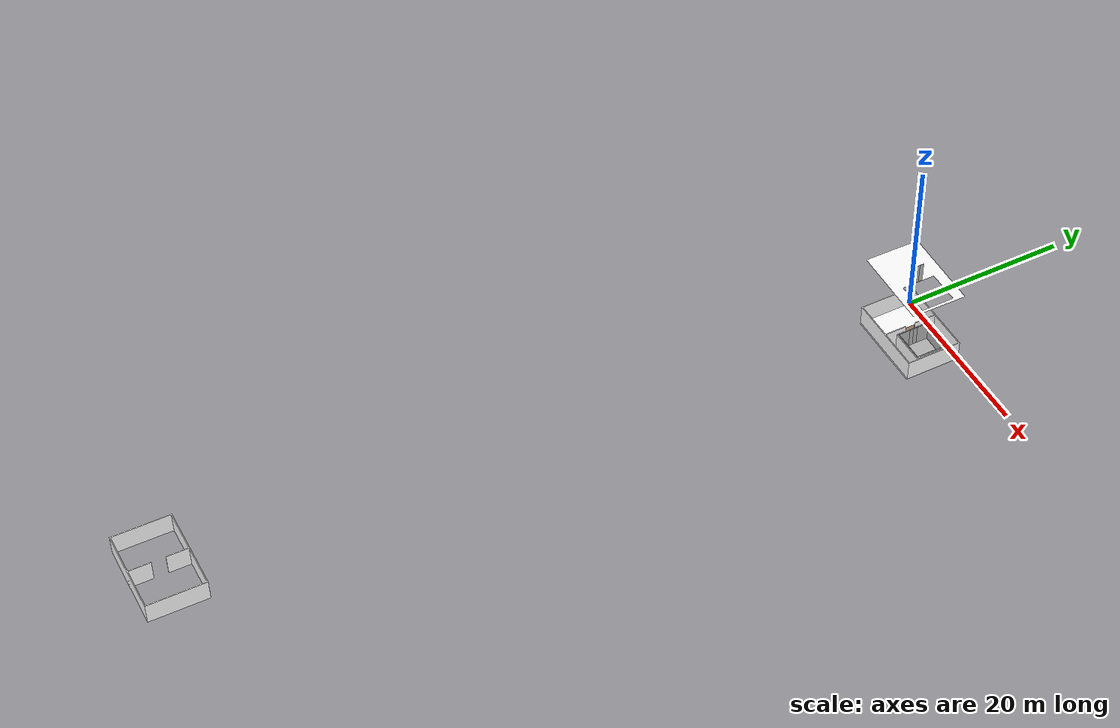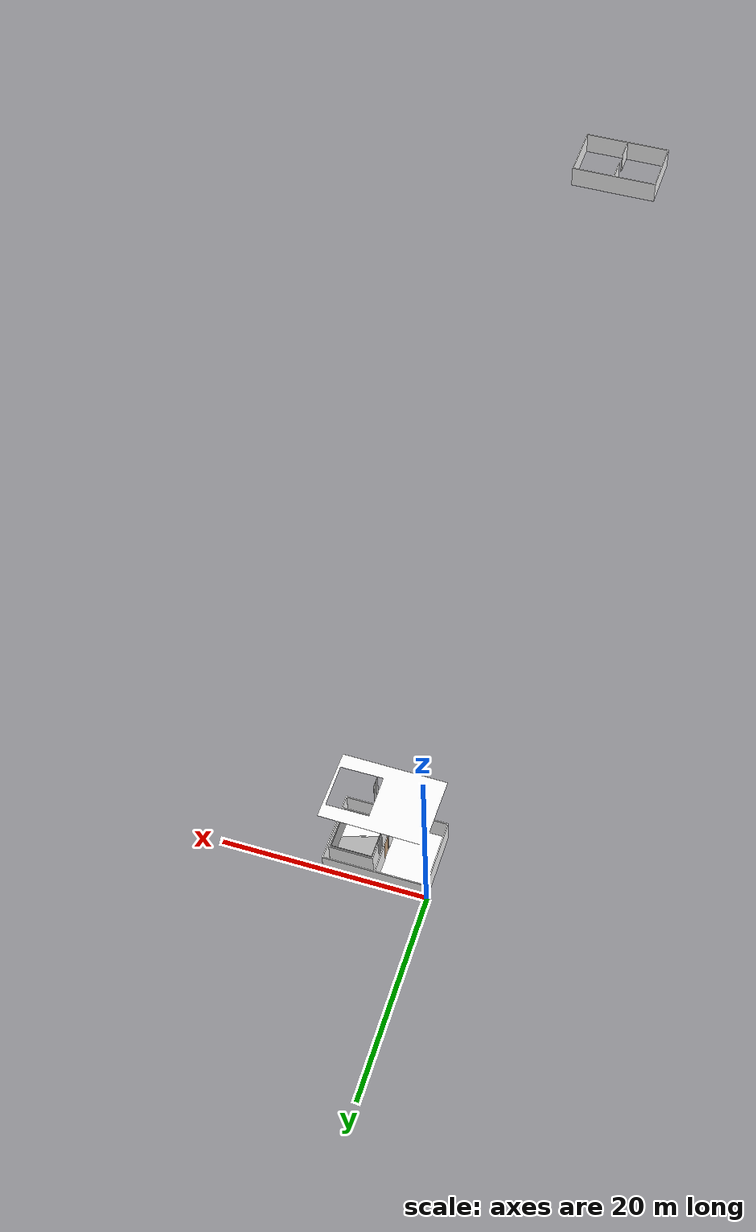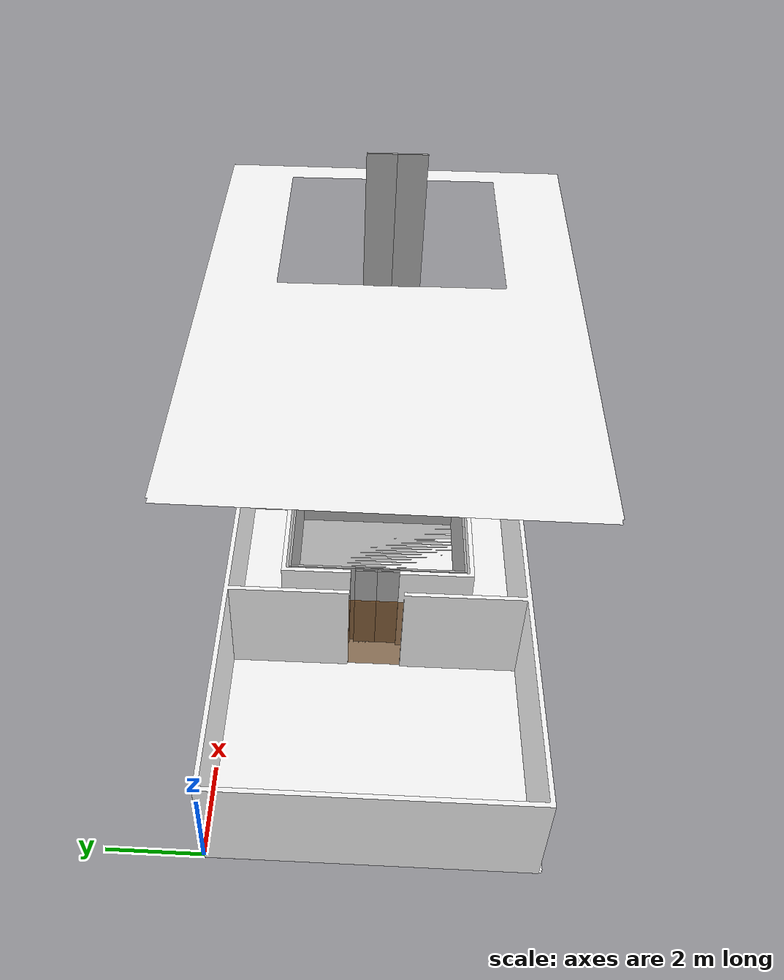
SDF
<sdf version="1.7">
 <world name="sim_world">
  <physics name="10ms" type="ode">
   <max_step_size>0.01</max_step_size>
   <real_time_factor>1.0</real_time_factor>
  </physics>
  <plugin filename="libgz-sim-physics-system.so" name="gz::sim::systems::Physics"/>
  <plugin filename="libgz-sim-user-commands-system.so" name="gz::sim::systems::UserCommands"/>
  <plugin filename="libgz-sim-scene-broadcaster-system.so" name="gz::sim::systems::SceneBroadcaster"/>
  <plugin filename="libdoor.so" name="door"/>
  <plugin filename="liblift.so" name="lift"/>
  <scene><ambient>1 1 1</ambient><background>0.8 0.8 0.8</background><grid>false</grid></scene>
  <light type="directional" name="sun">
   <pose>0 0 10 0 0 0</pose>
   <diffuse>1 1 1 1</diffuse>
   <specular>0.2 0.2 0.2 1</specular>
   <attenuation>
    <range>1000</range>
    <constant>0.09</constant>
    <linear>0.001</linear>
    <quadratic>0.001</quadratic>
   </attenuation>
   <direction>-0.5 0.1 -0.9</direction>
  </light>
  <model name="null">
   <pose>4.965933333333334 -3.3262 0.0 0 0 1.5707963267948966</pose>
   <link name="right">
    <pose>0 0 1.11 0 0 0</pose>
    <visual name="right_visual">
     <geometry><box><size>1.299333333333333 0.03 2.2</size></box></geometry>
     <material>
      <ambient>0.5 0.25 0 0.6</ambient>
      <diffuse>0.5 0.25 0 0.6</diffuse>
      <pbr><metal><metalness>0.0</metalness></metal></pbr>
     </material>
    </visual>
    <collision name="right_collision">
     <geometry><box><size>1.299333333333333 0.03 2.2</size></box></geometry>
     <surface><contact><collide_bitmask>0x02</collide_bitmask></contact></surface>
    </collision>
    <inertial>
     <mass>50.0</mass>
     <inertia><ixx>20.17041666666667</ixx><iyy>27.201112962962963</iyy><izz>7.0381962962962925</izz></inertia>
    </inertial>
   </link>
   <joint name="right_joint" type="revolute">
    <parent>world</parent>
    <child>right</child>
    <axis><xyz>0 0 -1</xyz><limit><lower>0</lower><upper>1.57</upper></limit></axis>
    <pose>0.6546666666666665 0 0 0 0 0</pose>
   </joint>
   <plugin name="register_component" filename="libregister_component.so">
    <component name="Door">
     <v_max_door>0.5</v_max_door>
     <a_max_door>0.3</a_max_door>
     <a_nom_door>0.15</a_nom_door>
     <dx_min_door>0.01</dx_min_door>
     <f_max_door>500.0</f_max_door>
     <ros_interface>true</ros_interface>
     <door name="null" type="SwingDoor" left_joint_name="empty_joint" right_joint_name="right_joint"/>
    </component>
   </plugin>
  </model>
  <include><name>simple_L1</name><uri>model://simple_L1</uri></include>
  <include><name>simple_L2</name><uri>model://simple_L2</uri><pose>0 0 10.0 0 0 0</pose></include>
  <model name="ShaftDoor_lift1_L1_lift1_door">
   <pose>5.616666666666667 -3.3333333333333335 0.0 0 0 1.57</pose>
   <link name="right_door">
    <pose>0.25 0 1.25 0 0 0</pose>
    <visual name="right_door_visual">
     <geometry><box><size>0.5 0.03 2.5</size></box></geometry>
     <material>
      <ambient>0.5 0.5 0.5 1</ambient>
      <diffuse>0.7 0.7 0.7 1</diffuse>
      <specular>0.6 0.6 0.6 1</specular>
      <emissive>0.1 0.1 0.1 1</emissive>
     </material>
    </visual>
    <collision name="right_door_collision">
     <geometry><box><size>0.5 0.03 2.5</size></box></geometry>
     <surface><contact><collide_bitmask>0x02</collide_bitmask></contact></surface>
    </collision>
   </link>
   <link name="left_door">
    <pose>-0.25 0 1.25 0 0 0</pose>
    <visual name="left_door_visual">
     <geometry><box><size>0.5 0.03 2.5</size></box></geometry>
     <material>
      <ambient>0.5 0.5 0.5 1</ambient>
      <diffuse>0.7 0.7 0.7 1</diffuse>
      <specular>0.6 0.6 0.6 1</specular>
      <emissive>0.1 0.1 0.1 1</emissive>
     </material>
    </visual>
    <collision name="left_door_collision">
     <geometry><box><size>0.5 0.03 2.5</size></box></geometry>
     <surface><contact><collide_bitmask>0x02</collide_bitmask></contact></surface>
    </collision>
   </link>
   <joint name="right_joint" type="prismatic">
    <parent>world</parent>
    <child>right_door</child>
    <axis><xyz>1 0 0</xyz><limit><lower>0</lower><upper>0.5</upper></limit></axis>
   </joint>
   <joint name="left_joint" type="prismatic">
    <parent>world</parent>
    <child>left_door</child>
    <axis><xyz>1 0 0</xyz><limit><lower>-0.5</lower><upper>0</upper></limit></axis>
   </joint>
   <link name="ramp">
    <pose>0 0 -0.025 0 0 0</pose>
    <visual name="ramp_visual">
     <geometry><box><size>1.0 0.1 0.05</size></box></geometry>
     <material>
      <ambient>0.5 0.5 0.5 1</ambient>
      <diffuse>0.7 0.7 0.7 1</diffuse>
      <specular>0.6 0.6 0.6 1</specular>
      <emissive>0.1 0.1 0.1 1</emissive>
     </material>
    </visual>
    <collision name="ramp_collision">
     <geometry><box><size>1.0 0.1 0.05</size></box></geometry>
     <surface><contact><collide_bitmask>0x02</collide_bitmask></contact></surface>
    </collision>
   </link>
   <joint name="ramp_joint" type="fixed"><parent>world</parent><child>ramp</child></joint>
   <plugin name="register_component" filename="libregister_component.so">
    <component name="Door">
     <v_max_door>0.3</v_max_door>
     <a_max_door>0.2</a_max_door>
     <a_nom_door>0.1</a_nom_door>
     <dx_min_door>0.0001</dx_min_door>
     <f_max_door>35.0</f_max_door>
     <door left_joint_name="left_joint" name="ShaftDoor_lift1_L1_lift1_door" right_joint_name="right_joint" type="DoubleSlidingDoor"/>
    </component>
   </plugin>
  </model>
  <model name="ShaftDoor_lift1_L2_lift1_door">
   <pose>5.616666666666667 -3.3333333333333335 10.0 0 0 1.57</pose>
   <link name="right_door">
    <pose>0.25 0 1.25 0 0 0</pose>
    <visual name="right_door_visual">
     <geometry><box><size>0.5 0.03 2.5</size></box></geometry>
     <material>
      <ambient>0.5 0.5 0.5 1</ambient>
      <diffuse>0.7 0.7 0.7 1</diffuse>
      <specular>0.6 0.6 0.6 1</specular>
      <emissive>0.1 0.1 0.1 1</emissive>
     </material>
    </visual>
    <collision name="right_door_collision">
     <geometry><box><size>0.5 0.03 2.5</size></box></geometry>
     <surface><contact><collide_bitmask>0x02</collide_bitmask></contact></surface>
    </collision>
   </link>
   <link name="left_door">
    <pose>-0.25 0 1.25 0 0 0</pose>
    <visual name="left_door_visual">
     <geometry><box><size>0.5 0.03 2.5</size></box></geometry>
     <material>
      <ambient>0.5 0.5 0.5 1</ambient>
      <diffuse>0.7 0.7 0.7 1</diffuse>
      <specular>0.6 0.6 0.6 1</specular>
      <emissive>0.1 0.1 0.1 1</emissive>
     </material>
    </visual>
    <collision name="left_door_collision">
     <geometry><box><size>0.5 0.03 2.5</size></box></geometry>
     <surface><contact><collide_bitmask>0x02</collide_bitmask></contact></surface>
    </collision>
   </link>
   <joint name="right_joint" type="prismatic">
    <parent>world</parent>
    <child>right_door</child>
    <axis><xyz>1 0 0</xyz><limit><lower>0</lower><upper>0.5</upper></limit></axis>
   </joint>
   <joint name="left_joint" type="prismatic">
    <parent>world</parent>
    <child>left_door</child>
    <axis><xyz>1 0 0</xyz><limit><lower>-0.5</lower><upper>0</upper></limit></axis>
   </joint>
   <link name="ramp">
    <pose>0 0 -0.025 0 0 0</pose>
    <visual name="ramp_visual">
     <geometry><box><size>1.0 0.1 0.05</size></box></geometry>
     <material>
      <ambient>0.5 0.5 0.5 1</ambient>
      <diffuse>0.7 0.7 0.7 1</diffuse>
      <specular>0.6 0.6 0.6 1</specular>
      <emissive>0.1 0.1 0.1 1</emissive>
     </material>
    </visual>
    <collision name="ramp_collision">
     <geometry><box><size>1.0 0.1 0.05</size></box></geometry>
     <surface><contact><collide_bitmask>0x02</collide_bitmask></contact></surface>
    </collision>
   </link>
   <joint name="ramp_joint" type="fixed"><parent>world</parent><child>ramp</child></joint>
   <plugin name="register_component" filename="libregister_component.so">
    <component name="Door">
     <v_max_door>0.3</v_max_door>
     <a_max_door>0.2</a_max_door>
     <a_nom_door>0.1</a_nom_door>
     <dx_min_door>0.0001</dx_min_door>
     <f_max_door>35.0</f_max_door>
     <door left_joint_name="left_joint" name="ShaftDoor_lift1_L2_lift1_door" right_joint_name="right_joint" type="DoubleSlidingDoor"/>
    </component>
   </plugin>
  </model>
  <model name="lift1">
   <link name="platform">
    <inertial>
     <mass>1200</mass>
     <inertia><ixx>1600.2500000000002</ixx><iyy>1600.2500000000002</iyy><izz>3200.0</izz></inertia>
    </inertial>
    <visual name="floor_visual">
     <pose>0 0 -0.025 0 0 0</pose>
     <geometry><box><size>4.0 4.0 0.05</size></box></geometry>
     <material>
      <ambient>0.5 0.5 0.5 1</ambient>
      <diffuse>0.7 0.7 0.7 1</diffuse>
      <specular>0.6 0.6 0.6 1</specular>
      <emissive>0.1 0.1 0.1 1</emissive>
     </material>
    </visual>
    <collision name="floor_collision">
     <pose>0 0 -0.025 0 0 0</pose>
     <geometry><box><size>4.0 4.0 0.05</size></box></geometry>
     <surface><contact><collide_bitmask>0x01</collide_bitmask></contact></surface>
    </collision>
    <visual name="frontwall1_visual">
     <pose>0.0 1.975 1.25 0 0 0</pose>
     <geometry><box><size>4.0 0.05 2.5</size></box></geometry>
     <material>
      <ambient>0.5 0.5 0.5 1</ambient>
      <diffuse>0.7 0.7 0.7 1</diffuse>
      <specular>0.6 0.6 0.6 1</specular>
      <emissive>0.1 0.1 0.1 1</emissive>
     </material>
    </visual>
    <collision name="frontwall1_collision">
     <pose>0.0 1.975 1.25 0 0 0</pose>
     <geometry><box><size>4.0 0.05 2.5</size></box></geometry>
     <surface><contact><collide_bitmask>0x01</collide_bitmask></contact></surface>
    </collision>
    <visual name="backwall1_visual">
     <pose>0.0 -1.975 1.25 0 0 0</pose>
     <geometry><box><size>4.0 0.05 2.5</size></box></geometry>
     <material>
      <ambient>0.5 0.5 0.5 1</ambient>
      <diffuse>0.7 0.7 0.7 1</diffuse>
      <specular>0.6 0.6 0.6 1</specular>
      <emissive>0.1 0.1 0.1 1</emissive>
     </material>
    </visual>
    <collision name="backwall1_collision">
     <pose>0.0 -1.975 1.25 0 0 0</pose>
     <geometry><box><size>4.0 0.05 2.5</size></box></geometry>
     <surface><contact><collide_bitmask>0x01</collide_bitmask></contact></surface>
    </collision>
    <visual name="leftwall1_visual">
     <pose>-1.975 -1.225 1.25 0 0 1.5707963267948966</pose>
     <geometry><box><size>1.45 0.05 2.5</size></box></geometry>
     <material>
      <ambient>0.5 0.5 0.5 1</ambient>
      <diffuse>0.7 0.7 0.7 1</diffuse>
      <specular>0.6 0.6 0.6 1</specular>
      <emissive>0.1 0.1 0.1 1</emissive>
     </material>
    </visual>
    <collision name="leftwall1_collision">
     <pose>-1.975 -1.225 1.25 0 0 1.5707963267948966</pose>
     <geometry><box><size>1.45 0.05 2.5</size></box></geometry>
     <surface><contact><collide_bitmask>0x01</collide_bitmask></contact></surface>
    </collision>
    <visual name="leftwall2_visual">
     <pose>-1.975 1.225 1.25 0 0 1.5707963267948966</pose>
     <geometry><box><size>1.45 0.05 2.5</size></box></geometry>
     <material>
      <ambient>0.5 0.5 0.5 1</ambient>
      <diffuse>0.7 0.7 0.7 1</diffuse>
      <specular>0.6 0.6 0.6 1</specular>
      <emissive>0.1 0.1 0.1 1</emissive>
     </material>
    </visual>
    <collision name="leftwall2_collision">
     <pose>-1.975 1.225 1.25 0 0 1.5707963267948966</pose>
     <geometry><box><size>1.45 0.05 2.5</size></box></geometry>
     <surface><contact><collide_bitmask>0x01</collide_bitmask></contact></surface>
    </collision>
    <visual name="rightwall1_visual">
     <pose>1.975 0.0 1.25 0 0 1.5707963267948966</pose>
     <geometry><box><size>3.9 0.05 2.5</size></box></geometry>
     <material>
      <ambient>0.5 0.5 0.5 1</ambient>
      <diffuse>0.7 0.7 0.7 1</diffuse>
      <specular>0.6 0.6 0.6 1</specular>
      <emissive>0.1 0.1 0.1 1</emissive>
     </material>
    </visual>
    <collision name="rightwall1_collision">
     <pose>1.975 0.0 1.25 0 0 1.5707963267948966</pose>
     <geometry><box><size>3.9 0.05 2.5</size></box></geometry>
     <surface><contact><collide_bitmask>0x01</collide_bitmask></contact></surface>
    </collision>
   </link>
   <joint name="cabin_joint" type="prismatic">
    <parent>world</parent>
    <child>platform</child>
    <axis><xyz>0 0 1</xyz></axis>
   </joint>
   <model name="CabinDoor_lift1_lift1_door">
    <pose>-1.975 0.0 0 0 0 1.57</pose>
    <link name="right_door">
     <pose>0.25 0 1.25 0 0 0</pose>
     <visual name="right_door_visual">
      <geometry><box><size>0.5 0.03 2.5</size></box></geometry>
      <material>
       <ambient>0.5 0.5 0.5 1</ambient>
       <diffuse>0.7 0.7 0.7 1</diffuse>
       <specular>0.6 0.6 0.6 1</specular>
       <emissive>0.1 0.1 0.1 1</emissive>
      </material>
     </visual>
     <collision name="right_door_collision">
      <geometry><box><size>0.5 0.03 2.5</size></box></geometry>
      <surface><contact><collide_bitmask>0x02</collide_bitmask></contact></surface>
     </collision>
    </link>
    <link name="left_door">
     <pose>-0.25 0 1.25 0 0 0</pose>
     <visual name="left_door_visual">
      <geometry><box><size>0.5 0.03 2.5</size></box></geometry>
      <material>
       <ambient>0.5 0.5 0.5 1</ambient>
       <diffuse>0.7 0.7 0.7 1</diffuse>
       <specular>0.6 0.6 0.6 1</specular>
       <emissive>0.1 0.1 0.1 1</emissive>
      </material>
     </visual>
     <collision name="left_door_collision">
      <geometry><box><size>0.5 0.03 2.5</size></box></geometry>
      <surface><contact><collide_bitmask>0x02</collide_bitmask></contact></surface>
     </collision>
    </link>
    <plugin name="register_component" filename="libregister_component.so">
     <component name="Door">
      <v_max_door>0.3</v_max_door>
      <a_max_door>0.2</a_max_door>
      <a_nom_door>0.1</a_nom_door>
      <dx_min_door>0.0001</dx_min_door>
      <f_max_door>35.0</f_max_door>
      <door left_joint_name="CabinDoor_lift1_lift1_door_left_joint" name="CabinDoor_lift1_lift1_door" right_joint_name="CabinDoor_lift1_lift1_door_right_joint" type="DoubleSlidingDoor"/>
     </component>
    </plugin>
   </model>
   <joint name="CabinDoor_lift1_lift1_door_right_joint" type="prismatic">
    <parent>platform</parent>
    <child>CabinDoor_lift1_lift1_door::right_door</child>
    <axis><xyz>1 0 0</xyz><limit><lower>0</lower><upper>0.5</upper></limit></axis>
   </joint>
   <joint name="CabinDoor_lift1_lift1_door_left_joint" type="prismatic">
    <parent>platform</parent>
    <child>CabinDoor_lift1_lift1_door::left_door</child>
    <axis><xyz>1 0 0</xyz><limit><lower>-0.5</lower><upper>0</upper></limit></axis>
   </joint>
   <plugin name="register_component" filename="libregister_component.so">
    <component name="Lift">
     <lift_name>lift1</lift_name>
     <floor name="L1" elevation="0.0">
      <door_pair cabin_door="CabinDoor_lift1_lift1_door" shaft_door="ShaftDoor_lift1_L1_lift1_door"/>
     </floor>
     <floor name="L2" elevation="10.0">
      <door_pair cabin_door="CabinDoor_lift1_lift1_door" shaft_door="ShaftDoor_lift1_L2_lift1_door"/>
     </floor>
     <initial_floor>L1</initial_floor>
     <v_max_cabin>2.0</v_max_cabin>
     <a_max_cabin>1.2</a_max_cabin>
     <a_nom_cabin>1.0</a_nom_cabin>
     <dx_min_cabin>0.001</dx_min_cabin>
     <f_max_cabin>25323.0</f_max_cabin>
     <cabin_joint_name>cabin_joint</cabin_joint_name>
    </component>
   </plugin>
   <pose>7.666666666666667 -3.3333333333333335 0 0 0 0.0</pose>
  </model>
  <rmf_charger_waypoints name="charger_waypoints">
   <rmf_vertex name="tinyRobot1_charger" x="3.3333333333333335" y="-3.3333333333333335" level="L1"/>
  </rmf_charger_waypoints>
 </world>
</sdf>

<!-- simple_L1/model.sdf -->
<sdf version="1.7">
  <model name="simple_L1">
    <static>true</static>
    <link name="floor_1">
      <visual name="visual">
        <geometry>
          <mesh>
            <uri>model://simple_L1/meshes/floor_1.obj</uri>
          </mesh>
        </geometry>
        <material>
          <diffuse>1.0 1.0 1.0</diffuse>
          <specular>0.1 0.1 0.1</specular>
          <pbr>
            <metal>
              <metalness>0.0</metalness>
              <albedo_map>model://simple_L1/meshes/blue_linoleum.png</albedo_map>
            </metal>
          </pbr>
          <script>
            <uri>model://simple_L1/meshes/</uri>
            <name>floor_1_Diffuse</name>
          </script>
        </material>
      </visual>
      <collision name="collision">
        <geometry>
          <mesh>
            <uri>model://simple_L1/meshes/floor_1.obj</uri>
          </mesh>
        </geometry>
        <surface>
          <contact>
            <collide_bitmask>0x01</collide_bitmask>
          </contact>
        </surface>
      </collision>
    </link>
    <link name="wall_1">
      <visual name="wall_1">
        <geometry>
          <mesh>
            <uri>model://simple_L1/meshes/wall_1.obj</uri>
          </mesh>
        </geometry>
        <transparency>0.0</transparency>
        <material>
          <diffuse>1.0 1.0 1.0</diffuse>
          <specular>0.1 0.1 0.1</specular>
          <pbr>
            <metal>
              <metalness>0.0</metalness>
              <albedo_map>model://simple_L1/meshes/default.png</albedo_map>
            </metal>
          </pbr>
          <script>
            <uri>model://simple_L1/meshes/</uri>
            <name>wall_1_Diffuse</name>
          </script>
        </material>
      </visual>
      <collision name="collision">
        <geometry>
          <mesh>
            <uri>model://simple_L1/meshes/wall_1.obj</uri>
          </mesh>
        </geometry>
        <surface>
          <contact>
            <collide_bitmask>0x01</collide_bitmask>
          </contact>
        </surface>
      </collision>
      <pose>-0.05000000000000021 -6.716666666666668 0 0 0 0</pose>
    </link>
  </model>
</sdf>

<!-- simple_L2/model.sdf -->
<sdf version="1.7">
  <model name="simple_L2">
    <static>true</static>
    <link name="floor_1">
      <visual name="visual">
        <geometry>
          <mesh>
            <uri>model://simple_L2/meshes/floor_1.obj</uri>
          </mesh>
        </geometry>
        <material>
          <diffuse>1.0 1.0 1.0</diffuse>
          <specular>0.1 0.1 0.1</specular>
          <pbr>
            <metal>
              <metalness>0.0</metalness>
              <albedo_map>model://simple_L2/meshes/blue_linoleum.png</albedo_map>
            </metal>
          </pbr>
          <script>
            <uri>model://simple_L2/meshes/</uri>
            <name>floor_1_Diffuse</name>
          </script>
        </material>
      </visual>
      <collision name="collision">
        <geometry>
          <mesh>
            <uri>model://simple_L2/meshes/floor_1.obj</uri>
          </mesh>
        </geometry>
        <surface>
          <contact>
            <collide_bitmask>0x01</collide_bitmask>
          </contact>
        </surface>
      </collision>
    </link>
    <link name="wall_1">
      <visual name="wall_1">
        <geometry>
          <mesh>
            <uri>model://simple_L2/meshes/wall_1.obj</uri>
          </mesh>
        </geometry>
        <transparency>0.0</transparency>
        <material>
          <diffuse>1.0 1.0 1.0</diffuse>
          <specular>0.1 0.1 0.1</specular>
          <pbr>
            <metal>
              <metalness>0.0</metalness>
              <albedo_map>model://simple_L2/meshes/default.png</albedo_map>
            </metal>
          </pbr>
          <script>
            <uri>model://simple_L2/meshes/</uri>
            <name>wall_1_Diffuse</name>
          </script>
        </material>
      </visual>
      <collision name="collision">
        <geometry>
          <mesh>
            <uri>model://simple_L2/meshes/wall_1.obj</uri>
          </mesh>
        </geometry>
        <surface>
          <contact>
            <collide_bitmask>0x01</collide_bitmask>
          </contact>
        </surface>
      </collision>
      <pose>-0.050169290610440564 -96.76400140613353 0 0 0 0</pose>
    </link>
  </model>
</sdf>
